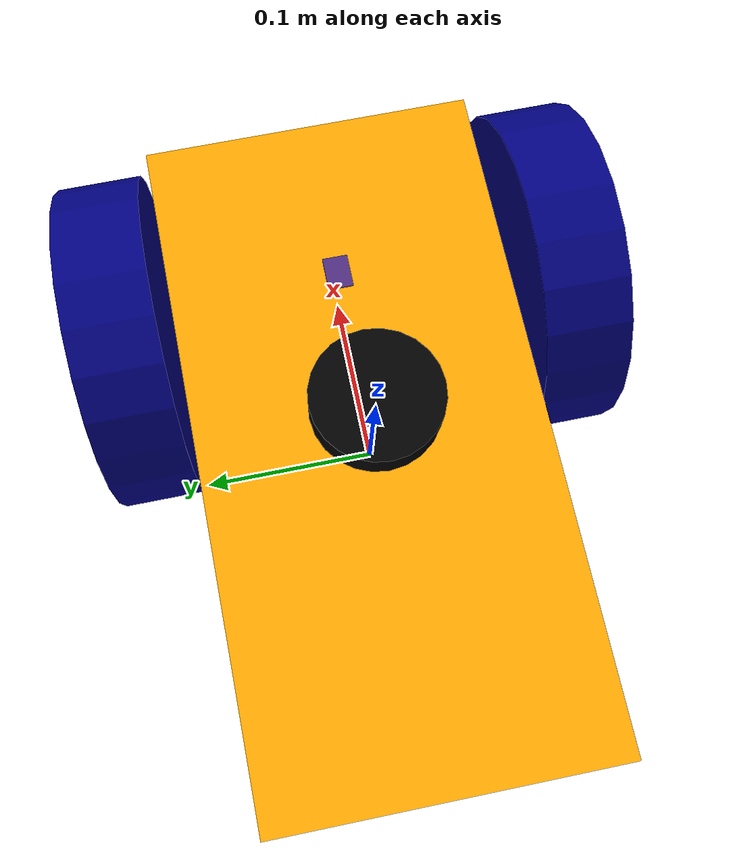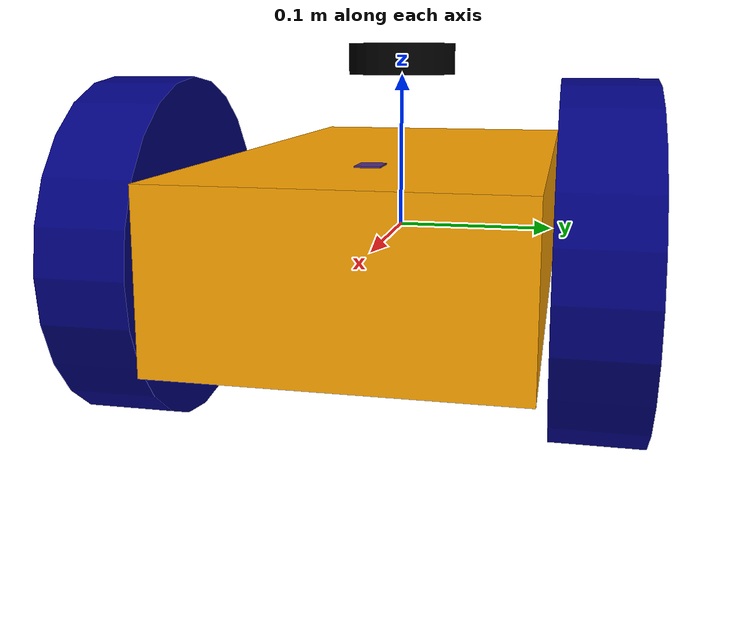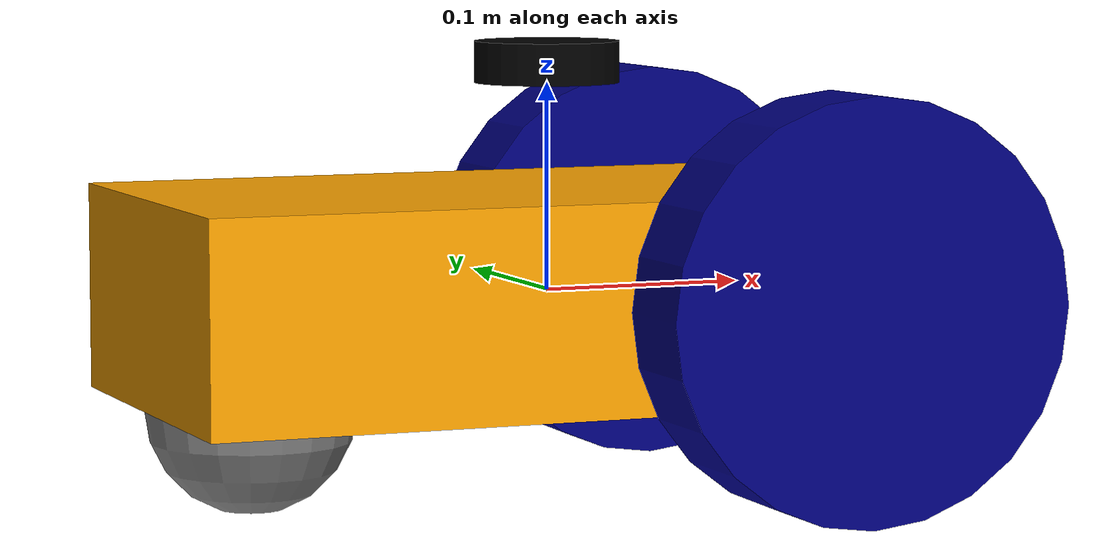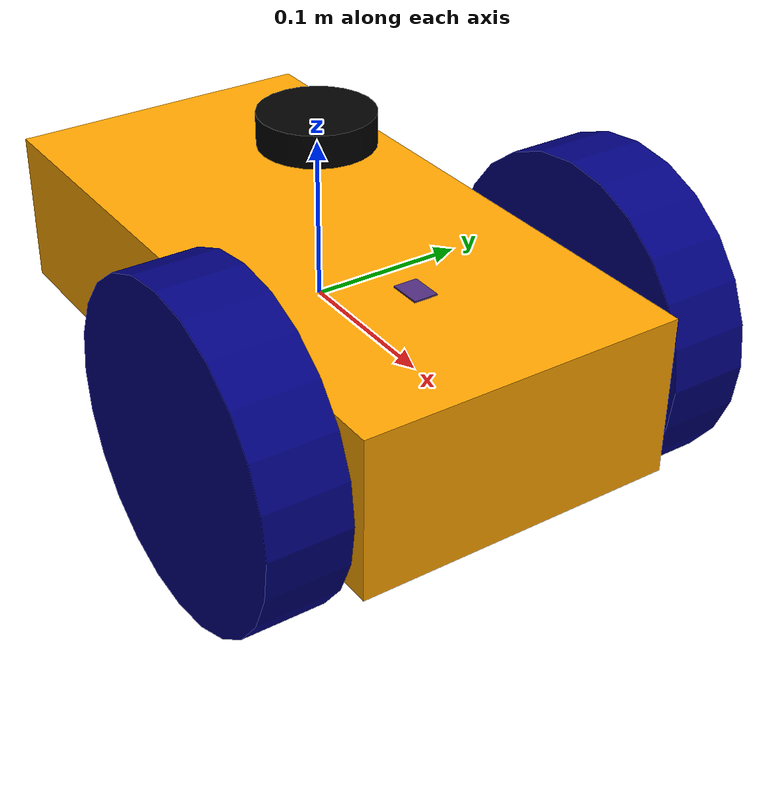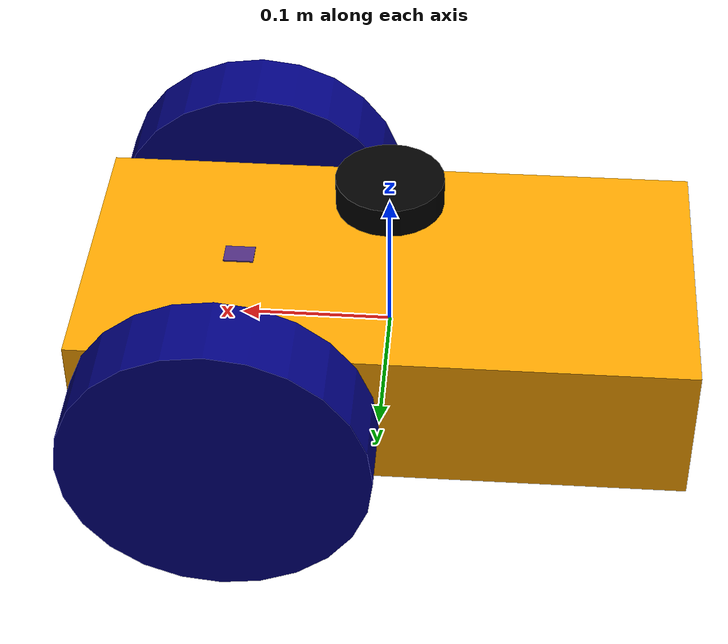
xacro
<?xml version="1.0"?>
<robot xmlns:xacro="http://www.ros.org/wiki/xacro" name="bot">
    <!-- Refer to Nav2's URDF tutorial -->
    <!-- https://navigation.ros.org/setup_guides/urdf/setup_urdf.html -->

    <!-- define colors -->
    <material name="black">
        <color rgba="0 0 0 1" />
    </material>
    <material name="white">
        <color rgba="1 1 1 1" />
    </material>
    <material name="purple">
        <color rgba="0.3098 0.1765 0.4980 1" />
    </material>
    <material name="orange">
        <color rgba="1 0.6471 0 1" />
    </material>
    <material name="navy">
        <color rgba="0 0 0.5 1" />
    </material>
    <material name="gray">
        <color rgba="0.5 0.5 0.5 1" />
    </material>

    <!-- Define robot constants -->
    <!-- pi -->
    <xacro:property name="PI" value="3.141592653589793" />
    <!-- base properties -->
    <xacro:property name="base_width" value="0.4" />
    <xacro:property name="base_depth" value="0.2" />
    <xacro:property name="base_height" value="0.1" />
    <xacro:property name="base_mass" value="2.0" />
    <!-- wheel properties -->
    <xacro:property name="wheel_ygap" value="0.005" />
    <xacro:property name="wheel_xoff" value="0.1" />
    <xacro:property name="wheel_radius" value="0.1" />
    <xacro:property name="wheel_width" value="0.05" />
    <xacro:property name="wheel_mass" value="0.2" />
    <!-- caster properties -->
    <xacro:property name="caster_xoff" value="-0.15" />
    <xacro:property name="caster_radius" value="0.05" />
    <xacro:property name="caster_mass" value="0.3" />
    <!-- lidar properties -->
    <xacro:property name="lidar_radius" value="0.035" />
    <xacro:property name="lidar_height" value="0.02" />
    <xacro:property name="lidar_zoff" value="0.05" />
    <xacro:property name="lidar_mass" value="0.17" />
    <!-- imu properties -->
    <xacro:property name="imu_width" value="0.02" />
    <xacro:property name="imu_depth" value="0.015" />
    <xacro:property name="imu_height" value="0.001" />
    <xacro:property name="imu_mass" value="0.002" />

    <!-- Define intertial property macros  -->
    <xacro:macro name="box_inertia" params="m w d h">
        <inertial>
            <origin xyz="0 0 0" rpy="${pi/2} 0 ${pi/2}" />
            <mass value="${m}" />
            <inertia ixx="${(m/12) * (h*h + d*d)}" ixy="0.0" ixz="0.0" iyy="${(m/12) * (w*w + h*h)}" iyz="0.0" izz="${(m/12) * (w*w + d*d)}" />
        </inertial>
    </xacro:macro>

    <xacro:macro name="cylinder_inertia" params="m r h">
        <inertial>
            <origin xyz="0 0 0" rpy="${pi/2} 0 0" />
            <mass value="${m}" />
            <inertia ixx="${(m/12) * (3*r*r + h*h)}" ixy="0" ixz="0" iyy="${(m/12) * (3*r*r + h*h)}" iyz="0" izz="${(m/2) * (r*r)}" />
        </inertial>
    </xacro:macro>

    <xacro:macro name="sphere_inertia" params="m r">
        <inertial>
            <mass value="${m}" />
            <inertia ixx="${(2/5) * m * (r*r)}" ixy="0.0" ixz="0.0" iyy="${(2/5) * m * (r*r)}" iyz="0.0" izz="${(2/5) * m * (r*r)}" />
        </inertial>
    </xacro:macro>

    <!-- Define wheel macros -->
    <xacro:macro name="wheel" params="prefix y_reflect">
        <joint name="${prefix}_joint" type="continuous">
            <parent link="base_link" />
            <child link="${prefix}_link" />
            <origin xyz="${wheel_xoff} ${y_reflect*(base_depth/2+wheel_ygap+wheel_width/2)} 0" rpy="${-PI/2} 0 0" />
            <axis xyz="0 0 1" />
        </joint>

        <link name="${prefix}_link">
            <visual>
                <geometry>
                    <cylinder radius="${wheel_radius}" length="${wheel_width}" />
                </geometry>
                <material name="navy" />
            </visual>

            <collision>
                <geometry>
                    <cylinder radius="${wheel_radius}" length="${wheel_width}" />
                </geometry>
            </collision>

            <xacro:cylinder_inertia m="${wheel_mass}" r="${wheel_radius}" h="${wheel_width}" />
        </link>

    </xacro:macro>

    <!-- Robot Base -->
    <link name="base_link">
        <visual>
            <geometry>
                <box size="${base_width} ${base_depth} ${base_height}" />
            </geometry>
            <material name="orange" />
        </visual>
        <collision>
            <geometry>
                <box size="${base_width} ${base_depth} ${base_height}" />
            </geometry>
        </collision>
    </link>
    <gazebo reference="base_link">
        <material>Gazebo/Wood</material>
    </gazebo>

    <!-- Robot Footprint -->
    <joint name="footprint_joint" type="fixed">
        <parent link="base_link" />
        <child link="base_footprint" />
        <origin xyz="0.0 0.0 ${-(wheel_radius)}" rpy="0 0 0" />
    </joint>

    <link name="base_footprint" />

    <!-- Base Inertial -->
    <joint name="base_inertial_joint" type="fixed">
        <parent link="base_link" />
        <child link="base_inertial" />
        <origin xyz="0 0 0" rpy="0 0 0" />
    </joint>

    <link name="base_inertial">
        <xacro:box_inertia m="${base_mass}" w="${base_width}" d="${base_depth}" h="${base_height}" />
    </link>

    <!-- Wheels -->
    <xacro:wheel prefix="left_wheel" y_reflect="1" />
    <gazebo reference="left_wheel_link">
        <mu1>1.0</mu1>
        <mu2>1.0</mu2>
        <material>Gazebo/Blue</material>
    </gazebo>

    <xacro:wheel prefix="right_wheel" y_reflect="-1" />
    <gazebo reference="right_wheel_link">
        <mu1>1.0</mu1>
        <mu2>1.0</mu2>
        <material>Gazebo/Blue</material>
    </gazebo>

    <!-- Caster ball -->
    <joint name="caster_joint" type="fixed">
        <parent link="base_link" />
        <child link="caster" />
        <origin xyz="${caster_xoff} 0.0 ${-(base_height/2)}" rpy="0 0 0" />
    </joint>

    <link name="caster">
        <visual>
            <geometry>
                <sphere radius="${caster_radius}" />
            </geometry>
            <material name="gray" />
        </visual>

        <collision>
            <geometry>
                <sphere radius="${caster_radius}" />
            </geometry>
        </collision>

        <xacro:sphere_inertia m="${caster_mass}" r="${caster_radius}" />
    </link>
    <gazebo reference="caster">
        <mu1>0.0</mu1>
        <mu2>0.0</mu2>
        <material>Gazebo/Gray</material>
    </gazebo>

    <!-- lidar -->
    <joint name="lidar_joint" type="fixed">
        <parent link="base_link" />
        <child link="lidar_link" />
        <origin xyz="0 0 ${(base_height+lidar_height)/2+lidar_zoff}" rpy="0 0 0" />
    </joint>

    <link name="lidar_link">
        <visual>
            <origin xyz="0 0 0" rpy="0 0 0" />
            <geometry>
                <cylinder radius="${lidar_radius}" length="${lidar_height}" />
            </geometry>
            <material name="black" />
        </visual>
        <collision>
            <origin xyz="0 0 0" rpy="0 0 0" />
            <geometry>
                <cylinder radius="${lidar_radius}" length="${lidar_height}" />
            </geometry>
        </collision>
        <xacro:cylinder_inertia m="${lidar_mass}" r="${lidar_radius}" h="${lidar_height}" />
    </link>
    <gazebo reference="lidar_link">
        <material>Gazebo/Black</material>
        <sensor name="lidar" type="ray">
            <always_on>true</always_on>
            <visualize>true</visualize>
            <update_rate>5</update_rate>
            <ray>
                <scan>
                    <horizontal>
                        <samples>360</samples>
                        <resolution>1.000000</resolution>
                        <min_angle>0.000000</min_angle>
                        <max_angle>6.280000</max_angle>
                    </horizontal>
                </scan>
                <range>
                    <min>0.120000</min>
                    <max>6</max>
                    <resolution>0.015000</resolution>
                </range>
                <noise>
                    <type>gaussian</type>
                    <mean>0.0</mean>
                    <stddev>0.01</stddev>
                </noise>
            </ray>
            <plugin name="scan" filename="libgazebo_ros_ray_sensor.so">
                <ros>
                    <remapping>~/out:=scan</remapping>
                </ros>
                <output_type>sensor_msgs/LaserScan</output_type>
                <frame_name>lidar_link</frame_name>
            </plugin>
        </sensor>
    </gazebo>

    <!-- imu -->
    <joint name="imu_joint" type="fixed">
        <parent link="base_link"/>
        <child link="imu_link"/>
        <origin xyz="${base_width/4} 0 ${(base_height+imu_height)/2}"/>
    </joint>

    <link name="imu_link">
        <visual>
            <geometry>
                <box size="${imu_width} ${imu_depth} ${imu_height}"/>
            </geometry>
            <material name="purple" />
        </visual>
        <collision>
            <geometry>
                <box size="${imu_width} ${imu_depth} ${imu_height}"/>
            </geometry>
        </collision>
        <xacro:box_inertia m="${imu_mass}" w="${imu_width}" d="${imu_depth}" h="${imu_height}" />
    </link>
    <gazebo reference="imu_link">
        <material>Gazebo/Purple</material>
        <sensor name="imu_sensor" type="imu">
            <plugin filename="libgazebo_ros_imu_sensor.so" name="imu_plugin">
                <ros>
                    <namespace>/bot</namespace>
                    <remapping>~/out:=imu</remapping>
                </ros>
                <initial_orientation_as_reference>false</initial_orientation_as_reference>
            </plugin>
            <always_on>true</always_on>
            <update_rate>100</update_rate>
            <visualize>true</visualize>
            <imu>
                <angular_velocity>
                    <x>
                        <noise type="gaussian">
                            <mean>0.0</mean>
                            <stddev>2e-4</stddev>
                            <bias_mean>0.0000075</bias_mean>
                            <bias_stddev>0.0000008</bias_stddev>
                        </noise>
                    </x>
                    <y>
                        <noise type="gaussian">
                            <mean>0.0</mean>
                            <stddev>2e-4</stddev>
                            <bias_mean>0.0000075</bias_mean>
                            <bias_stddev>0.0000008</bias_stddev>
                        </noise>
                    </y>
                    <z>
                        <noise type="gaussian">
                            <mean>0.0</mean>
                            <stddev>2e-4</stddev>
                            <bias_mean>0.0000075</bias_mean>
                            <bias_stddev>0.0000008</bias_stddev>
                        </noise>
                    </z>
                </angular_velocity>
                <linear_acceleration>
                    <x>
                        <noise type="gaussian">
                            <mean>0.0</mean>
                            <stddev>1.7e-2</stddev>
                            <bias_mean>0.1</bias_mean>
                            <bias_stddev>0.001</bias_stddev>
                        </noise>
                    </x>
                    <y>
                        <noise type="gaussian">
                            <mean>0.0</mean>
                            <stddev>1.7e-2</stddev>
                            <bias_mean>0.1</bias_mean>
                            <bias_stddev>0.001</bias_stddev>
                        </noise>
                    </y>
                    <z>
                        <noise type="gaussian">
                            <mean>0.0</mean>
                            <stddev>1.7e-2</stddev>
                            <bias_mean>0.1</bias_mean>
                            <bias_stddev>0.001</bias_stddev>
                        </noise>
                    </z>
                </linear_acceleration>
            </imu>
        </sensor>
    </gazebo>

    <!-- differential_drive_controller plugin -->
    <gazebo>
        <plugin name="differential_drive_controller" filename="libgazebo_ros_diff_drive.so">
            <ros>
                <namespace>/bot</namespace>
            </ros>
            <robot_base_frame>base_link</robot_base_frame>
            <update_rate>100</update_rate>
            <left_joint>left_wheel_joint</left_joint>
            <right_joint>right_wheel_joint</right_joint>
            <wheel_separation>0.26</wheel_separation>
            <wheel_diameter>0.2</wheel_diameter>
            <publish_odom>true</publish_odom>
            <publish_odom_tf>false</publish_odom_tf>
            <publish_wheel_tf>true</publish_wheel_tf>
            <odometry_frame>odom</odometry_frame>
            <max_wheel_torque>10</max_wheel_torque>
            <!-- Wheel acceleration, in rad/s^2, defaults to 0.0 rad/s^2 -->
            <max_acceleration>1.0</max_acceleration>
        </plugin>
    </gazebo>
</robot>
